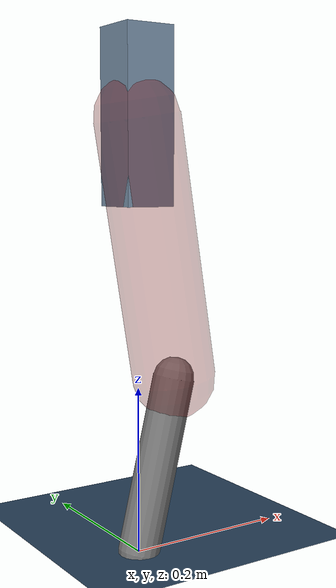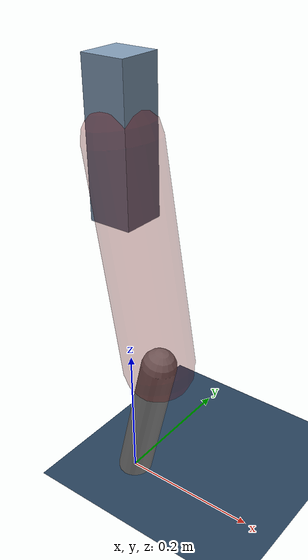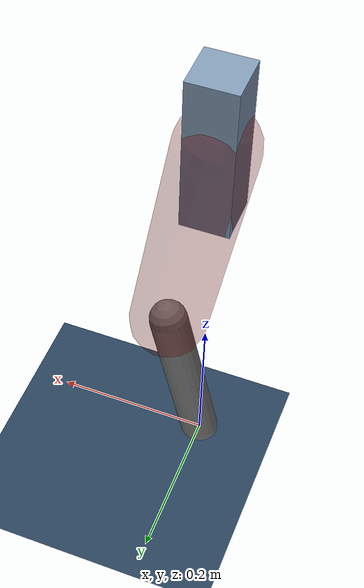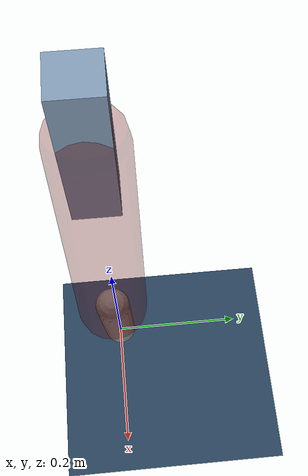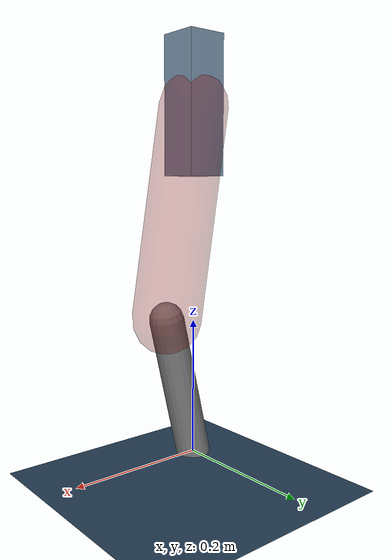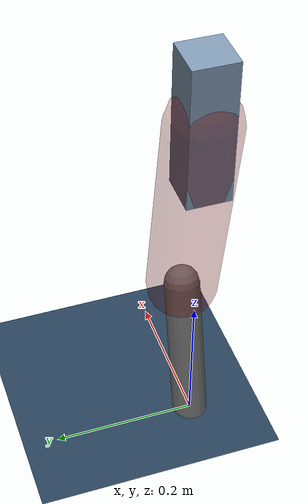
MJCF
<mujoco model="Hopper2D">
	<compiler inertiafromgeom="true" angle="radian" />
	<option timestep="0.001" integrator="implicit" cone="elliptic" solver="Newton" tolerance="1e-10" />

	<default>
		<geom contype="1" conaffinity="1" condim="3" friction="2 0.005 0.0001" solref="0.005 1" />
		<joint limited="true" damping="0.1" />
	</default>

	<asset>
		<texture name="skybox" type="skybox" builtin="gradient" rgb1=".4 .6 .8" rgb2="0 0 0" width="800" height="800" />
		<texture name="grid" type="2d" builtin="checker" rgb1=".1 .2 .3" rgb2=".2 .3 .4" width="300" height="300" mark="edge" markrgb=".2 .3 .4" />
		<material name="ground" texture="grid" texrepeat="1 1" texuniform="true" reflectance="0.1" />
		<material name="leg" rgba="0.5 0.6 0.7 1" />
	</asset>

	<worldbody>

		<geom name="floor" type="plane" size="5 5 0.25" material="ground" />

		<light directional="false" diffuse="0.8 0.8 0.8" specular="0.3 0.3 0.3" pos="0 0 2" dir="0 0 -1" />
		<light mode="targetbodycom" target="base" directional="false" diffuse="0.8 0.8 0.8" specular="0.3 0.3 0.3" pos="0 0 2" dir="0 0 -1" />

		<camera name="fixed" pos="0 -2 1" xyaxes="1 0 0 0 0 1" />
		<camera name="tracking" mode="trackcom" pos="0 -3 1" />

		<body name="root" pos="0 0 0.5125257002948056">
			<joint name="slide_x" type="slide" axis="1 0 0" range="-100 100" />
			<joint name="slide_z" type="slide" axis="0 0 1" range="0 10" />

			<body name="base" pos="0 0 0">
				<geom name="torso" type="box" size="0.03 0.03 0.1" mass="1.936" material="leg" />

				<body name="link1" pos="0 0 0" euler="0 1.408374076655077 0">
					<joint type="hinge" axis="0 -1 0" pos="0 0 0" name="hinge1" limited="true" range="-3.14 3.14" stiffness="0" damping="0.1" />
					<geom name="thigh" type="capsule" fromto="0 0 0 0.3090514234468831 0 0" size="0.05" rgba="0.5 0 0 0.3" mass="1.0133388433065844" />

					<body name="link2" pos="0.3090514234468831 0 0" euler="0 0.39872502961942297 0">
						<joint type="hinge" axis="0 -1 0" pos="0 0 0" name="hinge2" limited="true" range="-3.14 3.14" stiffness="0" damping="0.1" />
						<geom name="shank" type="capsule" fromto="0 0 0 0.21347427684792253 0 0" size="0.025" mass="0.4122268491631303" />

					</body>
				</body>
			</body>
		</body>
	</worldbody>

	<actuator>
		<motor name="torque1" joint="hinge1" ctrlrange="-46.00369129163264 46.00369129163264" ctrllimited="true" gear="1" />
		<motor name="torque2" joint="hinge2" ctrlrange="-64.79429603613033 64.79429603613033" ctrllimited="true" gear="1" />
	</actuator>
</mujoco>
